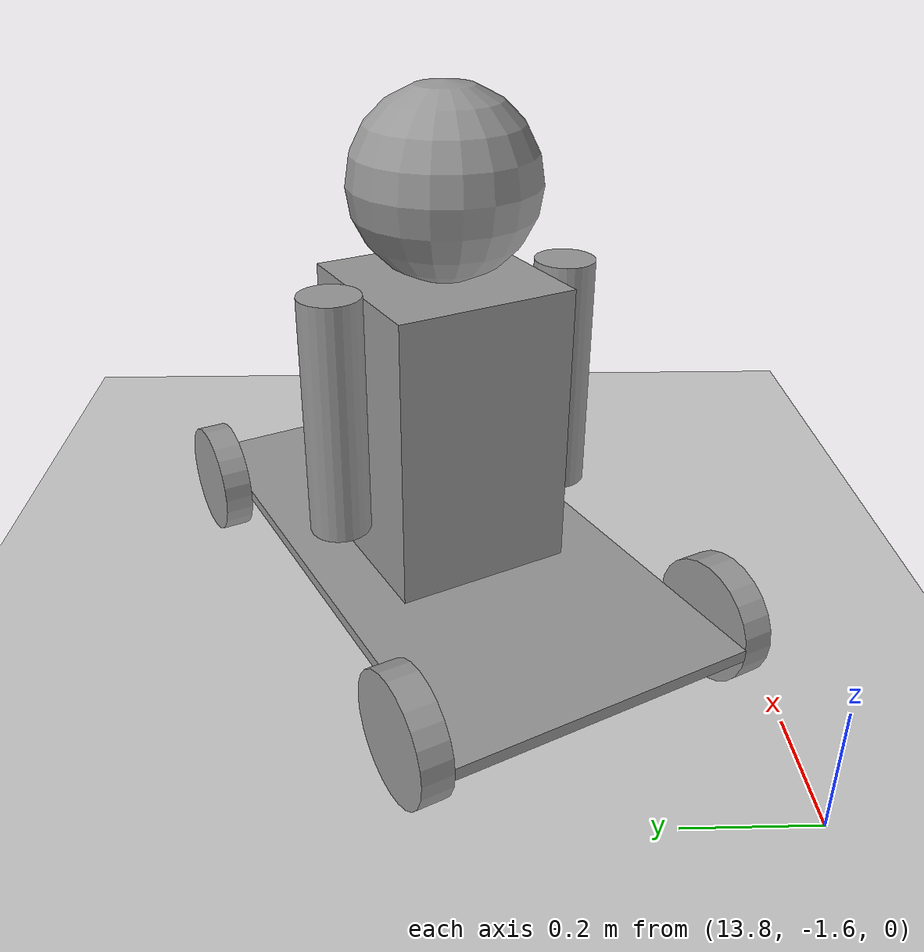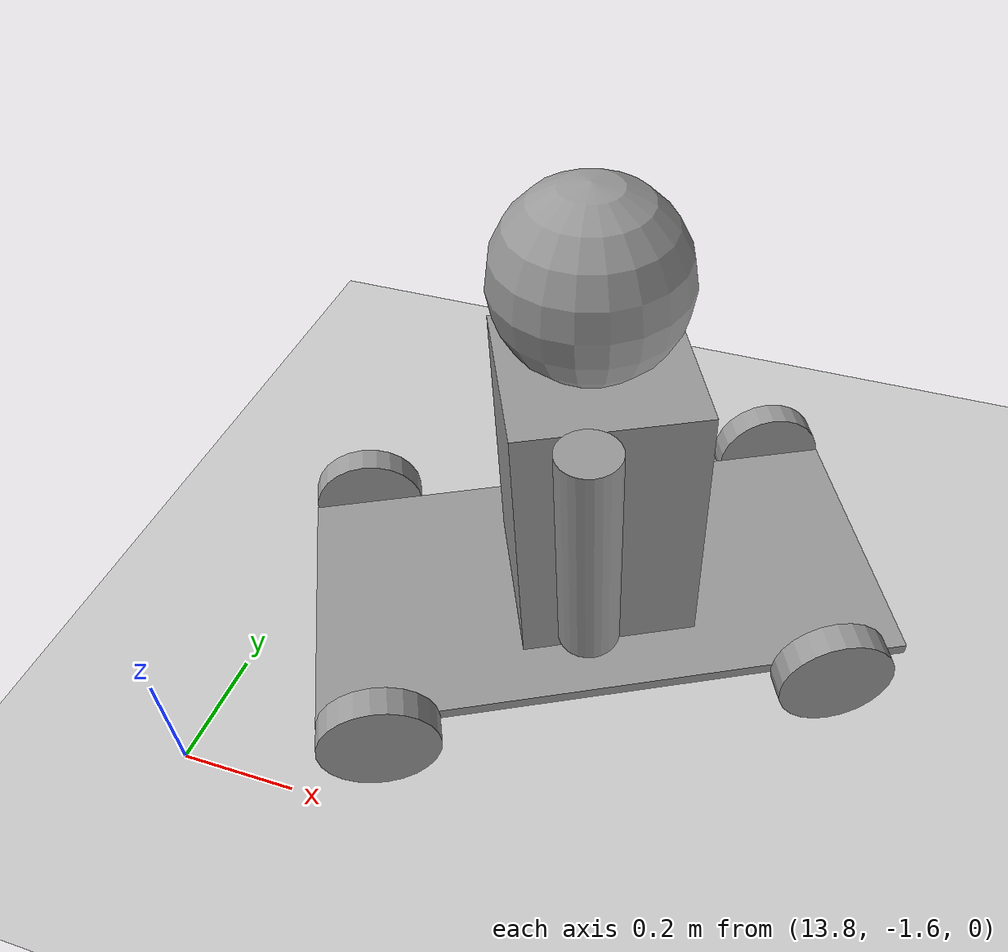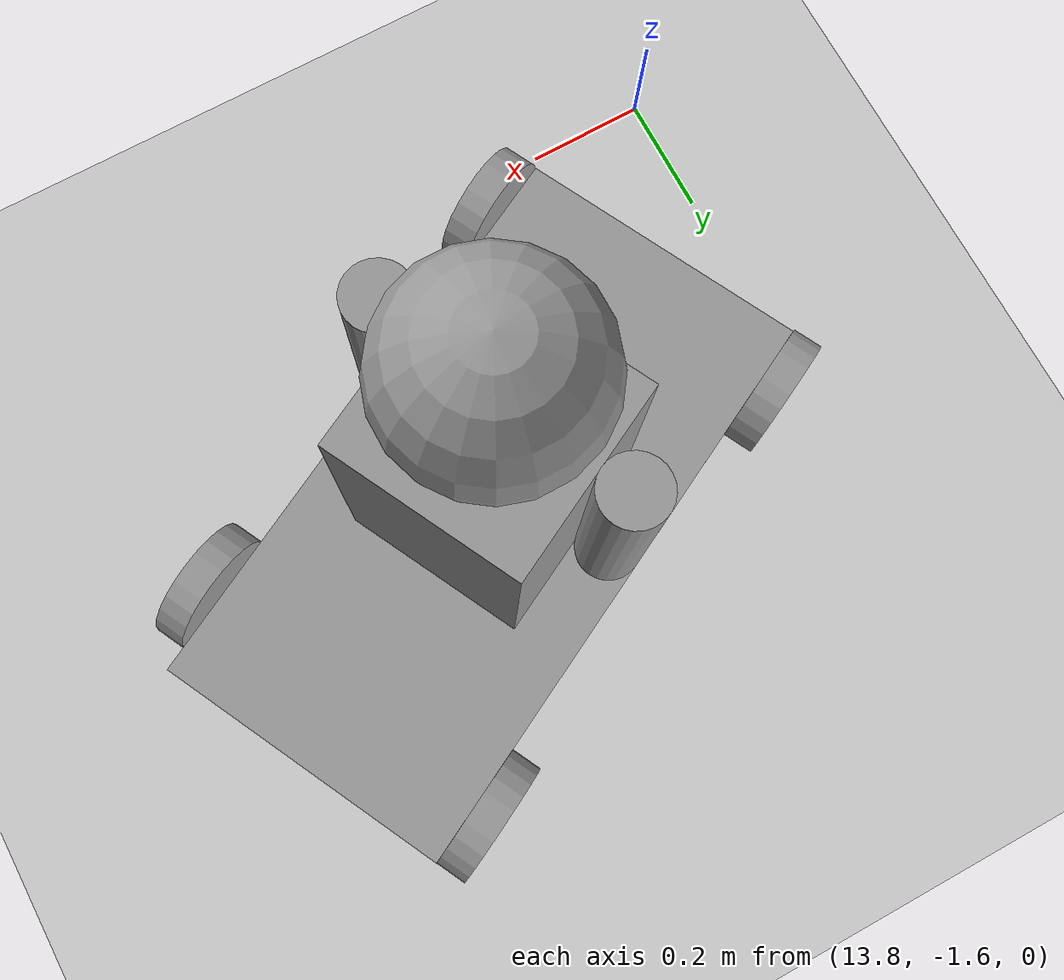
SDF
<sdf version="1.6">
 <world name="default">
  <model name="ground_plane">
   <static>1</static>
   <link name="link">
    <collision name="collision">
     <geometry><plane><normal>0 0 1</normal><size>100 100</size></plane></geometry>
     <surface>
      <contact><collide_bitmask>65535</collide_bitmask></contact>
      <friction><ode><mu>100</mu><mu2>50</mu2></ode></friction>
     </surface>
    </collision>
    <visual name="visual">
     <cast_shadows>0</cast_shadows>
     <geometry><plane><normal>0 0 1</normal><size>100 100</size></plane></geometry>
     <material>
      <script><uri>file://media/materials/scripts/gazebo.material</uri><name>Gazebo/Grey</name></script>
     </material>
    </visual>
   </link>
  </model>
  <model name="HumanoidRobot">
   <link name="link_1">
    <inertial>
     <mass>1</mass>
     <inertia>
      <ixx>0.166667</ixx>
      <ixy>0</ixy>
      <ixz>0</ixz>
      <iyy>0.166667</iyy>
      <iyz>0</iyz>
      <izz>0.166667</izz>
     </inertia>
    </inertial>
    <pose>0.002333 0.021111 0.035546 0 -0 0</pose>
    <visual name="visual">
     <geometry><box><size>1 0.5 0.02</size></box></geometry>
     <material>
      <lighting>1</lighting>
      <script><uri>file://media/materials/scripts/gazebo.material</uri><name>Gazebo/Grey</name></script>
      <shader type="vertex"><normal_map>__default__</normal_map></shader>
      <ambient>0.3 0.3 0.3 1</ambient>
      <diffuse>0.7 0.7 0.7 1</diffuse>
      <specular>0.01 0.01 0.01 1</specular>
      <emissive>0 0 0 1</emissive>
     </material>
    </visual>
    <collision name="collision">
     <geometry><box><size>1 0.5 0.02</size></box></geometry>
     <surface>
      <friction>
       <ode><mu>1</mu><mu2>1</mu2><fdir1>0 0 0</fdir1><slip1>0</slip1><slip2>0</slip2></ode>
       <torsional>
        <coefficient>1</coefficient>
        <patch_radius>0</patch_radius>
        <surface_radius>0</surface_radius>
        <use_patch_radius>1</use_patch_radius>
        <ode><slip>0</slip></ode>
       </torsional>
      </friction>
      <bounce><restitution_coefficient>0</restitution_coefficient><threshold>1e+06</threshold></bounce>
      <contact>
       <collide_without_contact>0</collide_without_contact>
       <collide_without_contact_bitmask>1</collide_without_contact_bitmask>
       <collide_bitmask>1</collide_bitmask>
       <ode>
        <soft_cfm>0</soft_cfm>
        <soft_erp>0.2</soft_erp>
        <kp>1e+13</kp>
        <kd>1</kd>
        <max_vel>0.01</max_vel>
        <min_depth>0</min_depth>
       </ode>
       <bullet>
        <split_impulse>1</split_impulse>
        <split_impulse_penetration_threshold>-0.01</split_impulse_penetration_threshold>
        <soft_cfm>0</soft_cfm>
        <soft_erp>0.2</soft_erp>
        <kp>1e+13</kp>
        <kd>1</kd>
       </bullet>
      </contact>
     </surface>
    </collision>
   </link>
   <link name="link_2">
    <inertial>
     <mass>1</mass>
     <inertia><ixx>0.145833</ixx><ixy>0</ixy><ixz>0</ixz><iyy>0.145833</iyy><iyz>0</iyz><izz>0.125</izz></inertia>
    </inertial>
    <pose>0.362333 -0.254 0.035434 1.57 -0 0</pose>
    <visual name="visual">
     <geometry><cylinder><radius>0.1</radius><length>0.05</length></cylinder></geometry>
     <material>
      <lighting>1</lighting>
      <script><uri>file://media/materials/scripts/gazebo.material</uri><name>Gazebo/Grey</name></script>
      <shader type="vertex"><normal_map>__default__</normal_map></shader>
      <ambient>0.3 0.3 0.3 1</ambient>
      <diffuse>0.7 0.7 0.7 1</diffuse>
      <specular>0.01 0.01 0.01 1</specular>
      <emissive>0 0 0 1</emissive>
     </material>
    </visual>
    <collision name="collision">
     <geometry><cylinder><radius>0.1</radius><length>0.05</length></cylinder></geometry>
     <surface>
      <friction>
       <ode><mu>1</mu><mu2>1</mu2><fdir1>0 0 0</fdir1><slip1>0</slip1><slip2>0</slip2></ode>
       <torsional>
        <coefficient>1</coefficient>
        <patch_radius>0</patch_radius>
        <surface_radius>0</surface_radius>
        <use_patch_radius>1</use_patch_radius>
        <ode><slip>0</slip></ode>
       </torsional>
      </friction>
      <bounce><restitution_coefficient>0</restitution_coefficient><threshold>1e+06</threshold></bounce>
      <contact>
       <collide_without_contact>0</collide_without_contact>
       <collide_without_contact_bitmask>1</collide_without_contact_bitmask>
       <collide_bitmask>1</collide_bitmask>
       <ode>
        <soft_cfm>0</soft_cfm>
        <soft_erp>0.2</soft_erp>
        <kp>1e+13</kp>
        <kd>1</kd>
        <max_vel>0.01</max_vel>
        <min_depth>0</min_depth>
       </ode>
       <bullet>
        <split_impulse>1</split_impulse>
        <split_impulse_penetration_threshold>-0.01</split_impulse_penetration_threshold>
        <soft_cfm>0</soft_cfm>
        <soft_erp>0.2</soft_erp>
        <kp>1e+13</kp>
        <kd>1</kd>
       </bullet>
      </contact>
     </surface>
    </collision>
   </link>
   <link name="link_2_clone">
    <inertial>
     <mass>1</mass>
     <inertia><ixx>0.145833</ixx><ixy>0</ixy><ixz>0</ixz><iyy>0.145833</iyy><iyz>0</iyz><izz>0.125</izz></inertia>
    </inertial>
    <pose>-0.397667 -0.253969 0.035546 1.57 -0 0</pose>
    <visual name="visual">
     <geometry><cylinder><radius>0.1</radius><length>0.05</length></cylinder></geometry>
     <material>
      <lighting>1</lighting>
      <script><uri>file://media/materials/scripts/gazebo.material</uri><name>Gazebo/Grey</name></script>
      <shader type="vertex"><normal_map>__default__</normal_map></shader>
      <ambient>0.3 0.3 0.3 1</ambient>
      <diffuse>0.7 0.7 0.7 1</diffuse>
      <specular>0.01 0.01 0.01 1</specular>
      <emissive>0 0 0 1</emissive>
     </material>
    </visual>
    <collision name="collision">
     <geometry><cylinder><radius>0.1</radius><length>0.05</length></cylinder></geometry>
     <surface>
      <friction>
       <ode><mu>1</mu><mu2>1</mu2><fdir1>0 0 0</fdir1><slip1>0</slip1><slip2>0</slip2></ode>
       <torsional>
        <coefficient>1</coefficient>
        <patch_radius>0</patch_radius>
        <surface_radius>0</surface_radius>
        <use_patch_radius>1</use_patch_radius>
        <ode><slip>0</slip></ode>
       </torsional>
      </friction>
      <bounce><restitution_coefficient>0</restitution_coefficient><threshold>1e+06</threshold></bounce>
      <contact>
       <collide_without_contact>0</collide_without_contact>
       <collide_without_contact_bitmask>1</collide_without_contact_bitmask>
       <collide_bitmask>1</collide_bitmask>
       <ode>
        <soft_cfm>0</soft_cfm>
        <soft_erp>0.2</soft_erp>
        <kp>1e+13</kp>
        <kd>1</kd>
        <max_vel>0.01</max_vel>
        <min_depth>0</min_depth>
       </ode>
       <bullet>
        <split_impulse>1</split_impulse>
        <split_impulse_penetration_threshold>-0.01</split_impulse_penetration_threshold>
        <soft_cfm>0</soft_cfm>
        <soft_erp>0.2</soft_erp>
        <kp>1e+13</kp>
        <kd>1</kd>
       </bullet>
      </contact>
     </surface>
    </collision>
   </link>
   <link name="link_2_clone_0">
    <inertial>
     <mass>1</mass>
     <inertia><ixx>0.145833</ixx><ixy>0</ixy><ixz>0</ixz><iyy>0.145833</iyy><iyz>0</iyz><izz>0.125</izz></inertia>
    </inertial>
    <pose>-0.397667 0.296191 0.035546 1.57 -0 0</pose>
    <visual name="visual">
     <geometry><cylinder><radius>0.1</radius><length>0.05</length></cylinder></geometry>
     <material>
      <lighting>1</lighting>
      <script><uri>file://media/materials/scripts/gazebo.material</uri><name>Gazebo/Grey</name></script>
      <shader type="vertex"><normal_map>__default__</normal_map></shader>
      <ambient>0.3 0.3 0.3 1</ambient>
      <diffuse>0.7 0.7 0.7 1</diffuse>
      <specular>0.01 0.01 0.01 1</specular>
      <emissive>0 0 0 1</emissive>
     </material>
    </visual>
    <collision name="collision">
     <geometry><cylinder><radius>0.1</radius><length>0.05</length></cylinder></geometry>
     <surface>
      <friction>
       <ode><mu>1</mu><mu2>1</mu2><fdir1>0 0 0</fdir1><slip1>0</slip1><slip2>0</slip2></ode>
       <torsional>
        <coefficient>1</coefficient>
        <patch_radius>0</patch_radius>
        <surface_radius>0</surface_radius>
        <use_patch_radius>1</use_patch_radius>
        <ode><slip>0</slip></ode>
       </torsional>
      </friction>
      <bounce><restitution_coefficient>0</restitution_coefficient><threshold>1e+06</threshold></bounce>
      <contact>
       <collide_without_contact>0</collide_without_contact>
       <collide_without_contact_bitmask>1</collide_without_contact_bitmask>
       <collide_bitmask>1</collide_bitmask>
       <ode>
        <soft_cfm>0</soft_cfm>
        <soft_erp>0.2</soft_erp>
        <kp>1e+13</kp>
        <kd>1</kd>
        <max_vel>0.01</max_vel>
        <min_depth>0</min_depth>
       </ode>
       <bullet>
        <split_impulse>1</split_impulse>
        <split_impulse_penetration_threshold>-0.01</split_impulse_penetration_threshold>
        <soft_cfm>0</soft_cfm>
        <soft_erp>0.2</soft_erp>
        <kp>1e+13</kp>
        <kd>1</kd>
       </bullet>
      </contact>
     </surface>
    </collision>
   </link>
   <link name="link_2_clone_1">
    <inertial>
     <mass>1</mass>
     <inertia><ixx>0.145833</ixx><ixy>0</ixy><ixz>0</ixz><iyy>0.145833</iyy><iyz>0</iyz><izz>0.125</izz></inertia>
    </inertial>
    <pose>0.402333 0.296191 0.035546 1.57 -0 0</pose>
    <visual name="visual">
     <geometry><cylinder><radius>0.1</radius><length>0.05</length></cylinder></geometry>
     <material>
      <lighting>1</lighting>
      <script><uri>file://media/materials/scripts/gazebo.material</uri><name>Gazebo/Grey</name></script>
      <shader type="vertex"><normal_map>__default__</normal_map></shader>
      <ambient>0.3 0.3 0.3 1</ambient>
      <diffuse>0.7 0.7 0.7 1</diffuse>
      <specular>0.01 0.01 0.01 1</specular>
      <emissive>0 0 0 1</emissive>
     </material>
    </visual>
    <collision name="collision">
     <geometry><cylinder><radius>0.1</radius><length>0.05</length></cylinder></geometry>
     <surface>
      <friction>
       <ode><mu>1</mu><mu2>1</mu2><fdir1>0 0 0</fdir1><slip1>0</slip1><slip2>0</slip2></ode>
       <torsional>
        <coefficient>1</coefficient>
        <patch_radius>0</patch_radius>
        <surface_radius>0</surface_radius>
        <use_patch_radius>1</use_patch_radius>
        <ode><slip>0</slip></ode>
       </torsional>
      </friction>
      <bounce><restitution_coefficient>0</restitution_coefficient><threshold>1e+06</threshold></bounce>
      <contact>
       <collide_without_contact>0</collide_without_contact>
       <collide_without_contact_bitmask>1</collide_without_contact_bitmask>
       <collide_bitmask>1</collide_bitmask>
       <ode>
        <soft_cfm>0</soft_cfm>
        <soft_erp>0.2</soft_erp>
        <kp>1e+13</kp>
        <kd>1</kd>
        <max_vel>0.01</max_vel>
        <min_depth>0</min_depth>
       </ode>
       <bullet>
        <split_impulse>1</split_impulse>
        <split_impulse_penetration_threshold>-0.01</split_impulse_penetration_threshold>
        <soft_cfm>0</soft_cfm>
        <soft_erp>0.2</soft_erp>
        <kp>1e+13</kp>
        <kd>1</kd>
       </bullet>
      </contact>
     </surface>
    </collision>
   </link>
   <link name="link_4">
    <inertial>
     <mass>1</mass>
     <inertia>
      <ixx>0.166667</ixx>
      <ixy>0</ixy>
      <ixz>0</ixz>
      <iyy>0.166667</iyy>
      <iyz>0</iyz>
      <izz>0.166667</izz>
     </inertia>
    </inertial>
    <pose>0.002333 0.021105 0.275546 0 -0 0</pose>
    <visual name="visual">
     <geometry><box><size>0.3 0.3 0.5</size></box></geometry>
     <material>
      <lighting>1</lighting>
      <script><uri>file://media/materials/scripts/gazebo.material</uri><name>Gazebo/Grey</name></script>
      <shader type="vertex"><normal_map>__default__</normal_map></shader>
      <ambient>0.3 0.3 0.3 1</ambient>
      <diffuse>0.7 0.7 0.7 1</diffuse>
      <specular>0.01 0.01 0.01 1</specular>
      <emissive>0 0 0 1</emissive>
     </material>
    </visual>
    <collision name="collision">
     <geometry><box><size>0.3 0.3 0.5</size></box></geometry>
     <surface>
      <friction>
       <ode><mu>1</mu><mu2>1</mu2><fdir1>0 0 0</fdir1><slip1>0</slip1><slip2>0</slip2></ode>
       <torsional>
        <coefficient>1</coefficient>
        <patch_radius>0</patch_radius>
        <surface_radius>0</surface_radius>
        <use_patch_radius>1</use_patch_radius>
        <ode><slip>0</slip></ode>
       </torsional>
      </friction>
      <bounce><restitution_coefficient>0</restitution_coefficient><threshold>1e+06</threshold></bounce>
      <contact>
       <collide_without_contact>0</collide_without_contact>
       <collide_without_contact_bitmask>1</collide_without_contact_bitmask>
       <collide_bitmask>1</collide_bitmask>
       <ode>
        <soft_cfm>0</soft_cfm>
        <soft_erp>0.2</soft_erp>
        <kp>1e+13</kp>
        <kd>1</kd>
        <max_vel>0.01</max_vel>
        <min_depth>0</min_depth>
       </ode>
       <bullet>
        <split_impulse>1</split_impulse>
        <split_impulse_penetration_threshold>-0.01</split_impulse_penetration_threshold>
        <soft_cfm>0</soft_cfm>
        <soft_erp>0.2</soft_erp>
        <kp>1e+13</kp>
        <kd>1</kd>
       </bullet>
      </contact>
     </surface>
    </collision>
   </link>
   <link name="link_5">
    <inertial>
     <mass>1</mass>
     <inertia><ixx>0.1</ixx><ixy>0</ixy><ixz>0</ixz><iyy>0.1</iyy><iyz>0</iyz><izz>0.1</izz></inertia>
    </inertial>
    <pose>-0.005667 0.021105 0.675546 0 -0 0</pose>
    <visual name="visual">
     <geometry><sphere><radius>0.15</radius></sphere></geometry>
     <material>
      <lighting>1</lighting>
      <script><uri>file://media/materials/scripts/gazebo.material</uri><name>Gazebo/Grey</name></script>
      <shader type="vertex"><normal_map>__default__</normal_map></shader>
      <ambient>0.3 0.3 0.3 1</ambient>
      <diffuse>0.7 0.7 0.7 1</diffuse>
      <specular>0.01 0.01 0.01 1</specular>
      <emissive>0 0 0 1</emissive>
     </material>
    </visual>
    <collision name="collision">
     <geometry><sphere><radius>0.15</radius></sphere></geometry>
     <surface>
      <friction>
       <ode><mu>1</mu><mu2>1</mu2><fdir1>0 0 0</fdir1><slip1>0</slip1><slip2>0</slip2></ode>
       <torsional>
        <coefficient>1</coefficient>
        <patch_radius>0</patch_radius>
        <surface_radius>0</surface_radius>
        <use_patch_radius>1</use_patch_radius>
        <ode><slip>0</slip></ode>
       </torsional>
      </friction>
      <bounce><restitution_coefficient>0</restitution_coefficient><threshold>1e+06</threshold></bounce>
      <contact>
       <collide_without_contact>0</collide_without_contact>
       <collide_without_contact_bitmask>1</collide_without_contact_bitmask>
       <collide_bitmask>1</collide_bitmask>
       <ode>
        <soft_cfm>0</soft_cfm>
        <soft_erp>0.2</soft_erp>
        <kp>1e+13</kp>
        <kd>1</kd>
        <max_vel>0.01</max_vel>
        <min_depth>0</min_depth>
       </ode>
       <bullet>
        <split_impulse>1</split_impulse>
        <split_impulse_penetration_threshold>-0.01</split_impulse_penetration_threshold>
        <soft_cfm>0</soft_cfm>
        <soft_erp>0.2</soft_erp>
        <kp>1e+13</kp>
        <kd>1</kd>
       </bullet>
      </contact>
     </surface>
    </collision>
   </link>
   <link name="link_6">
    <inertial>
     <mass>1</mass>
     <inertia><ixx>0.145833</ixx><ixy>0</ixy><ixz>0</ixz><iyy>0.145833</iyy><iyz>0</iyz><izz>0.125</izz></inertia>
    </inertial>
    <pose>-0.042667 -0.178895 0.335546 0 -0 0</pose>
    <visual name="visual">
     <geometry><cylinder><radius>0.05</radius><length>0.4</length></cylinder></geometry>
     <material>
      <lighting>1</lighting>
      <script><uri>file://media/materials/scripts/gazebo.material</uri><name>Gazebo/Grey</name></script>
      <shader type="vertex"><normal_map>__default__</normal_map></shader>
      <ambient>0.3 0.3 0.3 1</ambient>
      <diffuse>0.7 0.7 0.7 1</diffuse>
      <specular>0.01 0.01 0.01 1</specular>
      <emissive>0 0 0 1</emissive>
     </material>
    </visual>
    <collision name="collision">
     <geometry><cylinder><radius>0.05</radius><length>0.4</length></cylinder></geometry>
     <surface>
      <friction>
       <ode><mu>1</mu><mu2>1</mu2><fdir1>0 0 0</fdir1><slip1>0</slip1><slip2>0</slip2></ode>
       <torsional>
        <coefficient>1</coefficient>
        <patch_radius>0</patch_radius>
        <surface_radius>0</surface_radius>
        <use_patch_radius>1</use_patch_radius>
        <ode><slip>0</slip></ode>
       </torsional>
      </friction>
      <bounce><restitution_coefficient>0</restitution_coefficient><threshold>1e+06</threshold></bounce>
      <contact>
       <collide_without_contact>0</collide_without_contact>
       <collide_without_contact_bitmask>1</collide_without_contact_bitmask>
       <collide_bitmask>1</collide_bitmask>
       <ode>
        <soft_cfm>0</soft_cfm>
        <soft_erp>0.2</soft_erp>
        <kp>1e+13</kp>
        <kd>1</kd>
        <max_vel>0.01</max_vel>
        <min_depth>0</min_depth>
       </ode>
       <bullet>
        <split_impulse>1</split_impulse>
        <split_impulse_penetration_threshold>-0.01</split_impulse_penetration_threshold>
        <soft_cfm>0</soft_cfm>
        <soft_erp>0.2</soft_erp>
        <kp>1e+13</kp>
        <kd>1</kd>
       </bullet>
      </contact>
     </surface>
    </collision>
   </link>
   <link name="link_6_clone">
    <inertial>
     <mass>1</mass>
     <inertia><ixx>0.145833</ixx><ixy>0</ixy><ixz>0</ixz><iyy>0.145833</iyy><iyz>0</iyz><izz>0.125</izz></inertia>
    </inertial>
    <pose>-0.017667 0.221105 0.335546 0 -0 0</pose>
    <visual name="visual">
     <geometry><cylinder><radius>0.05</radius><length>0.4</length></cylinder></geometry>
     <material>
      <lighting>1</lighting>
      <script><uri>file://media/materials/scripts/gazebo.material</uri><name>Gazebo/Grey</name></script>
      <shader type="vertex"><normal_map>__default__</normal_map></shader>
      <ambient>0.3 0.3 0.3 1</ambient>
      <diffuse>0.7 0.7 0.7 1</diffuse>
      <specular>0.01 0.01 0.01 1</specular>
      <emissive>0 0 0 1</emissive>
     </material>
    </visual>
    <collision name="collision">
     <geometry><cylinder><radius>0.05</radius><length>0.4</length></cylinder></geometry>
     <surface>
      <friction>
       <ode><mu>1</mu><mu2>1</mu2><fdir1>0 0 0</fdir1><slip1>0</slip1><slip2>0</slip2></ode>
       <torsional>
        <coefficient>1</coefficient>
        <patch_radius>0</patch_radius>
        <surface_radius>0</surface_radius>
        <use_patch_radius>1</use_patch_radius>
        <ode><slip>0</slip></ode>
       </torsional>
      </friction>
      <bounce><restitution_coefficient>0</restitution_coefficient><threshold>1e+06</threshold></bounce>
      <contact>
       <collide_without_contact>0</collide_without_contact>
       <collide_without_contact_bitmask>1</collide_without_contact_bitmask>
       <collide_bitmask>1</collide_bitmask>
       <ode>
        <soft_cfm>0</soft_cfm>
        <soft_erp>0.2</soft_erp>
        <kp>1e+13</kp>
        <kd>1</kd>
        <max_vel>0.01</max_vel>
        <min_depth>0</min_depth>
       </ode>
       <bullet>
        <split_impulse>1</split_impulse>
        <split_impulse_penetration_threshold>-0.01</split_impulse_penetration_threshold>
        <soft_cfm>0</soft_cfm>
        <soft_erp>0.2</soft_erp>
        <kp>1e+13</kp>
        <kd>1</kd>
       </bullet>
      </contact>
     </surface>
    </collision>
   </link>
   <joint name="link_1_JOINT_0" type="revolute">
    <parent>link_1</parent>
    <child>link_2</child>
    <axis>
     <xyz>0 0 1</xyz>
     <use_parent_model_frame>0</use_parent_model_frame>
     <limit>
      <lower>-1.79769e+308</lower>
      <upper>1.79769e+308</upper>
      <effort>-1</effort>
      <velocity>-1</velocity>
     </limit>
     <dynamics>
      <spring_reference>0</spring_reference>
      <spring_stiffness>0</spring_stiffness>
      <damping>0</damping>
     </dynamics>
    </axis>
    <physics>
     <ode><limit><cfm>0</cfm><erp>0.2</erp></limit><suspension><cfm>0</cfm><erp>0.2</erp></suspension></ode>
    </physics>
   </joint>
   <joint name="link_1_JOINT_1" type="revolute">
    <parent>link_1</parent>
    <child>link_2_clone</child>
    <axis>
     <xyz>0 0 1</xyz>
     <use_parent_model_frame>0</use_parent_model_frame>
     <limit>
      <lower>-1.79769e+308</lower>
      <upper>1.79769e+308</upper>
      <effort>-1</effort>
      <velocity>-1</velocity>
     </limit>
     <dynamics>
      <spring_reference>0</spring_reference>
      <spring_stiffness>0</spring_stiffness>
      <damping>0</damping>
     </dynamics>
    </axis>
    <physics>
     <ode><limit><cfm>0</cfm><erp>0.2</erp></limit><suspension><cfm>0</cfm><erp>0.2</erp></suspension></ode>
    </physics>
   </joint>
   <joint name="link_1_JOINT_2" type="revolute">
    <parent>link_1</parent>
    <child>link_2_clone_0</child>
    <axis>
     <xyz>0 0 1</xyz>
     <use_parent_model_frame>0</use_parent_model_frame>
     <limit>
      <lower>-1.79769e+308</lower>
      <upper>1.79769e+308</upper>
      <effort>-1</effort>
      <velocity>-1</velocity>
     </limit>
     <dynamics>
      <spring_reference>0</spring_reference>
      <spring_stiffness>0</spring_stiffness>
      <damping>0</damping>
     </dynamics>
    </axis>
    <physics>
     <ode><limit><cfm>0</cfm><erp>0.2</erp></limit><suspension><cfm>0</cfm><erp>0.2</erp></suspension></ode>
    </physics>
   </joint>
   <joint name="link_1_JOINT_3" type="revolute">
    <parent>link_1</parent>
    <child>link_2_clone_1</child>
    <axis>
     <xyz>0 0 1</xyz>
     <use_parent_model_frame>0</use_parent_model_frame>
     <limit>
      <lower>-1.79769e+308</lower>
      <upper>1.79769e+308</upper>
      <effort>-1</effort>
      <velocity>-1</velocity>
     </limit>
     <dynamics>
      <spring_reference>0</spring_reference>
      <spring_stiffness>0</spring_stiffness>
      <damping>0</damping>
     </dynamics>
    </axis>
    <physics>
     <ode><limit><cfm>0</cfm><erp>0.2</erp></limit><suspension><cfm>0</cfm><erp>0.2</erp></suspension></ode>
    </physics>
   </joint>
   <joint name="link_1_JOINT_4" type="revolute">
    <parent>link_1</parent>
    <child>link_4</child>
    <axis>
     <xyz>0 0 1</xyz>
     <use_parent_model_frame>0</use_parent_model_frame>
     <limit>
      <lower>-1.79769e+308</lower>
      <upper>1.79769e+308</upper>
      <effort>-1</effort>
      <velocity>-1</velocity>
     </limit>
     <dynamics>
      <spring_reference>0</spring_reference>
      <spring_stiffness>0</spring_stiffness>
      <damping>0</damping>
     </dynamics>
    </axis>
    <physics>
     <ode><limit><cfm>0</cfm><erp>0.2</erp></limit><suspension><cfm>0</cfm><erp>0.2</erp></suspension></ode>
    </physics>
   </joint>
   <joint name="link_4_JOINT_5" type="revolute">
    <parent>link_4</parent>
    <child>link_5</child>
    <axis>
     <xyz>0 0 1</xyz>
     <use_parent_model_frame>0</use_parent_model_frame>
     <limit>
      <lower>-1.79769e+308</lower>
      <upper>1.79769e+308</upper>
      <effort>-1</effort>
      <velocity>-1</velocity>
     </limit>
     <dynamics>
      <spring_reference>0</spring_reference>
      <spring_stiffness>0</spring_stiffness>
      <damping>0</damping>
     </dynamics>
    </axis>
    <physics>
     <ode><limit><cfm>0</cfm><erp>0.2</erp></limit><suspension><cfm>0</cfm><erp>0.2</erp></suspension></ode>
    </physics>
   </joint>
   <joint name="link_4_JOINT_6" type="revolute">
    <parent>link_4</parent>
    <child>link_6</child>
    <axis>
     <xyz>0 1 0</xyz>
     <use_parent_model_frame>0</use_parent_model_frame>
     <limit>
      <lower>-1.79769e+308</lower>
      <upper>1.79769e+308</upper>
      <effort>-1</effort>
      <velocity>-1</velocity>
     </limit>
     <dynamics>
      <spring_reference>0</spring_reference>
      <spring_stiffness>0</spring_stiffness>
      <damping>0</damping>
     </dynamics>
    </axis>
    <physics>
     <ode><limit><cfm>0</cfm><erp>0.2</erp></limit><suspension><cfm>0</cfm><erp>0.2</erp></suspension></ode>
    </physics>
   </joint>
   <joint name="link_4_JOINT_7" type="revolute">
    <parent>link_4</parent>
    <child>link_6_clone</child>
    <axis>
     <xyz>0 1 0</xyz>
     <use_parent_model_frame>0</use_parent_model_frame>
     <limit>
      <lower>-1.79769e+308</lower>
      <upper>1.79769e+308</upper>
      <effort>-1</effort>
      <velocity>-1</velocity>
     </limit>
     <dynamics>
      <spring_reference>0</spring_reference>
      <spring_stiffness>0</spring_stiffness>
      <damping>0</damping>
     </dynamics>
    </axis>
    <physics>
     <ode><limit><cfm>0</cfm><erp>0.2</erp></limit><suspension><cfm>0</cfm><erp>0.2</erp></suspension></ode>
    </physics>
   </joint>
   <static>0</static>
   <pose>14.373 -1.10987 0.064532 -1.7e-05 -0.000132 0.474775</pose>
  </model>
 </world>
</sdf>
